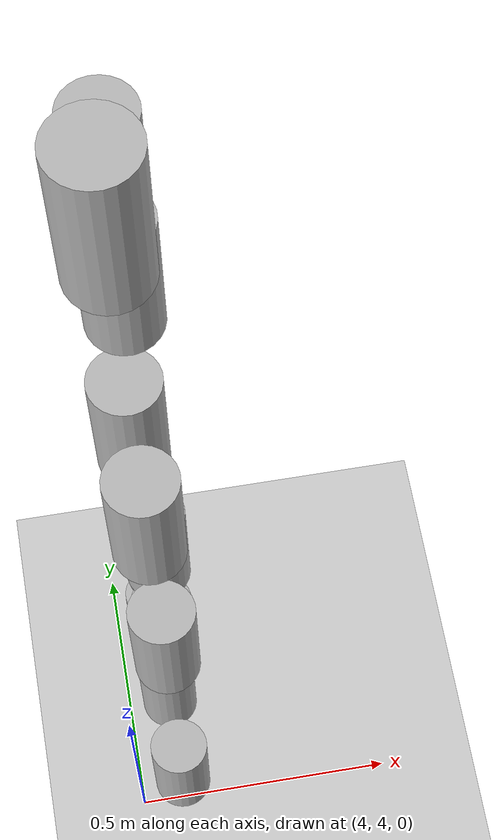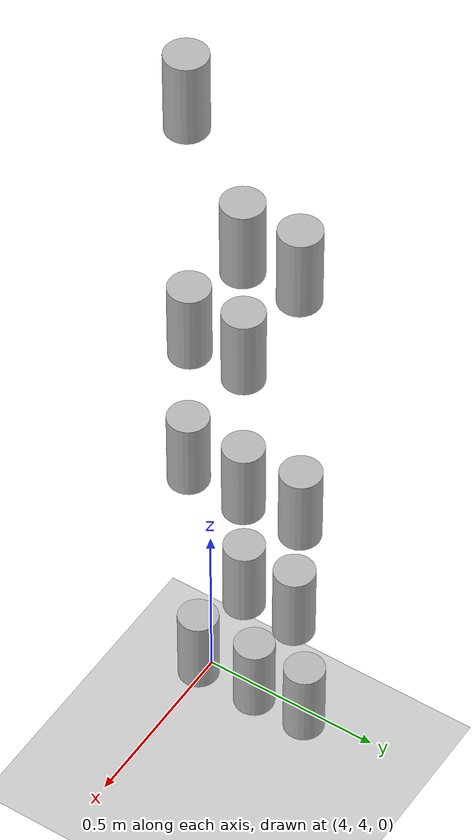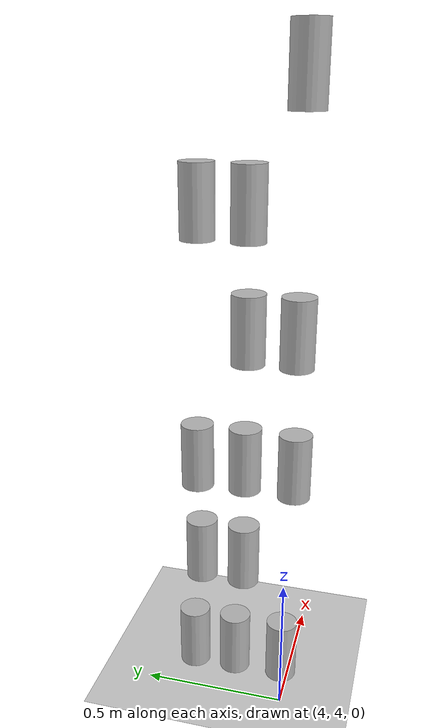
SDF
<sdf version="1.6">
 <world name="default">
  <model name="ground_plane">
   <static>1</static>
   <link name="link">
    <collision name="collision">
     <geometry><plane><normal>0 0 1</normal><size>100 100</size></plane></geometry>
     <surface><friction><ode><mu>100</mu><mu2>50</mu2></ode></friction></surface>
    </collision>
    <visual name="visual">
     <cast_shadows>0</cast_shadows>
     <geometry><plane><normal>0 0 1</normal><size>100 100</size></plane></geometry>
     <material>
      <script><uri>file://media/materials/scripts/gazebo.material</uri><name>Gazebo/Grey</name></script>
     </material>
    </visual>
   </link>
  </model>
  <model name="beer_clone_clone">
   <link name="link">
    <pose>0 0 0.115 0 -0 0</pose>
    <inertial>
     <mass>0.39</mass>
     <inertia><ixx>0.00058</ixx><ixy>0</ixy><ixz>0</ixz><iyy>0.00058</iyy><iyz>0</iyz><izz>0.00019</izz></inertia>
    </inertial>
    <collision name="collision">
     <geometry><cylinder><radius>0.055</radius><length>0.23</length></cylinder></geometry>
    </collision>
    <visual name="visual">
     <geometry><cylinder><radius>0.055</radius><length>0.23</length></cylinder></geometry>
     <material>
      <script>
       <uri>model://beer/materials/scripts</uri>
       <uri>model://beer/materials/textures</uri>
       <name>Beer/Diffuse</name>
      </script>
     </material>
    </visual>
   </link>
   <pose>4.08144 4.34258 0.060005 2.5e-05 9.7e-05 -1.51213</pose>
  </model>
  <model name="beer_clone_clone_clone">
   <link name="link">
    <pose>0 0 0.115 0 -0 0</pose>
    <inertial>
     <mass>0.39</mass>
     <inertia><ixx>0.00058</ixx><ixy>0</ixy><ixz>0</ixz><iyy>0.00058</iyy><iyz>0</iyz><izz>0.00019</izz></inertia>
    </inertial>
    <collision name="collision">
     <geometry><cylinder><radius>0.055</radius><length>0.23</length></cylinder></geometry>
    </collision>
    <visual name="visual">
     <geometry><cylinder><radius>0.055</radius><length>0.23</length></cylinder></geometry>
     <material>
      <script>
       <uri>model://beer/materials/scripts</uri>
       <uri>model://beer/materials/textures</uri>
       <name>Beer/Diffuse</name>
      </script>
     </material>
    </visual>
   </link>
   <pose>4.08371 4.19006 0.060001 2.1e-05 2e-06 -1.49344</pose>
  </model>
  <model name="beer_clone_clone_clone_3_clone">
   <link name="link">
    <pose>0 0 0.115 0 -0 0</pose>
    <inertial>
     <mass>0.39</mass>
     <inertia><ixx>0.00058</ixx><ixy>0</ixy><ixz>0</ixz><iyy>0.00058</iyy><iyz>0</iyz><izz>0.00019</izz></inertia>
    </inertial>
    <collision name="collision">
     <geometry><cylinder><radius>0.055</radius><length>0.23</length></cylinder></geometry>
    </collision>
    <visual name="visual">
     <geometry><cylinder><radius>0.055</radius><length>0.23</length></cylinder></geometry>
     <material>
      <script>
       <uri>model://beer/materials/scripts</uri>
       <uri>model://beer/materials/textures</uri>
       <name>Beer/Diffuse</name>
      </script>
     </material>
    </visual>
   </link>
   <pose>4.09336 4.31579 0.440001 9e-06 1.6e-05 -1.49399</pose>
  </model>
  <model name="beer_clone_clone_clone_3_clone_clone_0_clone">
   <link name="link">
    <pose>0 0 0.115 0 -0 0</pose>
    <inertial>
     <mass>0.39</mass>
     <inertia><ixx>0.00058</ixx><ixy>0</ixy><ixz>0</ixz><iyy>0.00058</iyy><iyz>0</iyz><izz>0.00019</izz></inertia>
    </inertial>
    <collision name="collision">
     <geometry><cylinder><radius>0.055</radius><length>0.23</length></cylinder></geometry>
    </collision>
    <visual name="visual">
     <geometry><cylinder><radius>0.055</radius><length>0.23</length></cylinder></geometry>
     <material>
      <script>
       <uri>model://beer/materials/scripts</uri>
       <uri>model://beer/materials/textures</uri>
       <name>Beer/Diffuse</name>
      </script>
     </material>
    </visual>
   </link>
   <pose>4.09138 4.16369 0.440001 1.2e-05 1e-06 -1.4913</pose>
  </model>
  <model name="beer_clone_clone_clone_3_clone_clone_clone">
   <link name="link">
    <pose>0 0 0.115 0 -0 0</pose>
    <inertial>
     <mass>0.39</mass>
     <inertia><ixx>0.00058</ixx><ixy>0</ixy><ixz>0</ixz><iyy>0.00058</iyy><iyz>0</iyz><izz>0.00019</izz></inertia>
    </inertial>
    <collision name="collision">
     <geometry><cylinder><radius>0.055</radius><length>0.23</length></cylinder></geometry>
    </collision>
    <visual name="visual">
     <geometry><cylinder><radius>0.055</radius><length>0.23</length></cylinder></geometry>
     <material>
      <script>
       <uri>model://beer/materials/scripts</uri>
       <uri>model://beer/materials/textures</uri>
       <name>Beer/Diffuse</name>
      </script>
     </material>
    </visual>
   </link>
   <pose>4.08481 3.99332 0.809992 2.5e-05 6e-06 -1.49256</pose>
  </model>
  <model name="beer_clone_clone_clone_3_clone_clone_clone_clone">
   <link name="link">
    <pose>0 0 0.115 0 -0 0</pose>
    <inertial>
     <mass>0.39</mass>
     <inertia><ixx>0.00058</ixx><ixy>0</ixy><ixz>0</ixz><iyy>0.00058</iyy><iyz>0</iyz><izz>0.00019</izz></inertia>
    </inertial>
    <collision name="collision">
     <geometry><cylinder><radius>0.055</radius><length>0.23</length></cylinder></geometry>
    </collision>
    <visual name="visual">
     <geometry><cylinder><radius>0.055</radius><length>0.23</length></cylinder></geometry>
     <material>
      <script>
       <uri>model://beer/materials/scripts</uri>
       <uri>model://beer/materials/textures</uri>
       <name>Beer/Diffuse</name>
      </script>
     </material>
    </visual>
   </link>
   <pose>4.09384 4.16307 0.810001 8e-06 -1e-05 -1.49146</pose>
  </model>
  <model name="beer_clone_clone_clone_3_clone_clone_clone_clone_0">
   <link name="link">
    <pose>0 0 0.115 0 -0 0</pose>
    <inertial>
     <mass>0.39</mass>
     <inertia><ixx>0.00058</ixx><ixy>0</ixy><ixz>0</ixz><iyy>0.00058</iyy><iyz>0</iyz><izz>0.00019</izz></inertia>
    </inertial>
    <collision name="collision">
     <geometry><cylinder><radius>0.055</radius><length>0.23</length></cylinder></geometry>
    </collision>
    <visual name="visual">
     <geometry><cylinder><radius>0.055</radius><length>0.23</length></cylinder></geometry>
     <material>
      <script>
       <uri>model://beer/materials/scripts</uri>
       <uri>model://beer/materials/textures</uri>
       <name>Beer/Diffuse</name>
      </script>
     </material>
    </visual>
   </link>
   <pose>4.08656 4.32628 0.810001 -1e-05 -2e-06 -1.49465</pose>
  </model>
  <model name="beer_clone_clone_clone_3_clone_clone_clone_clone_2_clone_1">
   <link name="link">
    <pose>0 0 0.115 0 -0 0</pose>
    <inertial>
     <mass>0.39</mass>
     <inertia><ixx>0.00058</ixx><ixy>0</ixy><ixz>0</ixz><iyy>0.00058</iyy><iyz>0</iyz><izz>0.00019</izz></inertia>
    </inertial>
    <collision name="collision">
     <geometry><cylinder><radius>0.055</radius><length>0.23</length></cylinder></geometry>
    </collision>
    <visual name="visual">
     <geometry><cylinder><radius>0.055</radius><length>0.23</length></cylinder></geometry>
     <material>
      <script>
       <uri>model://beer/materials/scripts</uri>
       <uri>model://beer/materials/textures</uri>
       <name>Beer/Diffuse</name>
      </script>
     </material>
    </visual>
   </link>
   <pose>4.08012 4.15458 1.2674 2.7e-05 1.7e-05 -1.49111</pose>
  </model>
  <model name="beer_clone_clone_clone_3_clone_clone_clone_clone_2_clone_0_clone_2">
   <link name="link">
    <pose>0 0 0.115 0 -0 0</pose>
    <inertial>
     <mass>0.39</mass>
     <inertia><ixx>0.00058</ixx><ixy>0</ixy><ixz>0</ixz><iyy>0.00058</iyy><iyz>0</iyz><izz>0.00019</izz></inertia>
    </inertial>
    <collision name="collision">
     <geometry><cylinder><radius>0.055</radius><length>0.23</length></cylinder></geometry>
    </collision>
    <visual name="visual">
     <geometry><cylinder><radius>0.055</radius><length>0.23</length></cylinder></geometry>
     <material>
      <script>
       <uri>model://beer/materials/scripts</uri>
       <uri>model://beer/materials/textures</uri>
       <name>Beer/Diffuse</name>
      </script>
     </material>
    </visual>
   </link>
   <pose>4.09293 4.16069 1.64741 2.7e-05 1.6e-05 -1.49172</pose>
  </model>
  <model name="beer_clone_clone_clone_3_clone_clone_clone_clone_2_clone_0_clone_3">
   <link name="link">
    <pose>0 0 0.115 0 -0 0</pose>
    <inertial>
     <mass>0.39</mass>
     <inertia><ixx>0.00058</ixx><ixy>0</ixy><ixz>0</ixz><iyy>0.00058</iyy><iyz>0</iyz><izz>0.00019</izz></inertia>
    </inertial>
    <collision name="collision">
     <geometry><cylinder><radius>0.055</radius><length>0.23</length></cylinder></geometry>
    </collision>
    <visual name="visual">
     <geometry><cylinder><radius>0.055</radius><length>0.23</length></cylinder></geometry>
     <material>
      <script>
       <uri>model://beer/materials/scripts</uri>
       <uri>model://beer/materials/textures</uri>
       <name>Beer/Diffuse</name>
      </script>
     </material>
    </visual>
   </link>
   <pose>4.09649 4.32151 1.64741 1e-06 5e-06 -1.49447</pose>
  </model>
  <model name="beer_clone_clone_clone_3_clone_clone_clone_clone_2_clone_clone">
   <link name="link">
    <pose>0 0 0.115 0 -0 0</pose>
    <inertial>
     <mass>0.39</mass>
     <inertia><ixx>0.00058</ixx><ixy>0</ixy><ixz>0</ixz><iyy>0.00058</iyy><iyz>0</iyz><izz>0.00019</izz></inertia>
    </inertial>
    <collision name="collision">
     <geometry><cylinder><radius>0.055</radius><length>0.23</length></cylinder></geometry>
    </collision>
    <visual name="visual">
     <geometry><cylinder><radius>0.055</radius><length>0.23</length></cylinder></geometry>
     <material>
      <script>
       <uri>model://beer/materials/scripts</uri>
       <uri>model://beer/materials/textures</uri>
       <name>Beer/Diffuse</name>
      </script>
     </material>
    </visual>
   </link>
   <pose>4.08058 3.99863 1.26741 2.4e-05 1e-06 -1.49462</pose>
  </model>
  <model name="beer_clone_clone_clone_3_clone_clone_clone_clone_2_clone_0_clone_0_clone_0">
   <link name="link">
    <pose>0 0 0.115 0 -0 0</pose>
    <inertial>
     <mass>0.39</mass>
     <inertia><ixx>0.00058</ixx><ixy>0</ixy><ixz>0</ixz><iyy>0.00058</iyy><iyz>0</iyz><izz>0.00019</izz></inertia>
    </inertial>
    <collision name="collision">
     <geometry><cylinder><radius>0.055</radius><length>0.23</length></cylinder></geometry>
    </collision>
    <visual name="visual">
     <geometry><cylinder><radius>0.055</radius><length>0.23</length></cylinder></geometry>
     <material>
      <script>
       <uri>model://beer/materials/scripts</uri>
       <uri>model://beer/materials/textures</uri>
       <name>Beer/Diffuse</name>
      </script>
     </material>
    </visual>
   </link>
   <pose>4.07791 3.99748 2.0174 2.8e-05 8e-06 -1.49448</pose>
  </model>
  <model name="beer_clone_clone_clone_clone">
   <link name="link">
    <pose>0 0 0.115 0 -0 0</pose>
    <inertial>
     <mass>0.39</mass>
     <inertia><ixx>0.00058</ixx><ixy>0</ixy><ixz>0</ixz><iyy>0.00058</iyy><iyz>0</iyz><izz>0.00019</izz></inertia>
    </inertial>
    <collision name="collision">
     <geometry><cylinder><radius>0.055</radius><length>0.23</length></cylinder></geometry>
    </collision>
    <visual name="visual">
     <geometry><cylinder><radius>0.055</radius><length>0.23</length></cylinder></geometry>
     <material>
      <script>
       <uri>model://beer/materials/scripts</uri>
       <uri>model://beer/materials/textures</uri>
       <name>Beer/Diffuse</name>
      </script>
     </material>
    </visual>
   </link>
   <pose>4.08446 4.01574 0.059989 0 -2.8e-05 -1.49484</pose>
  </model>
 </world>
</sdf>
